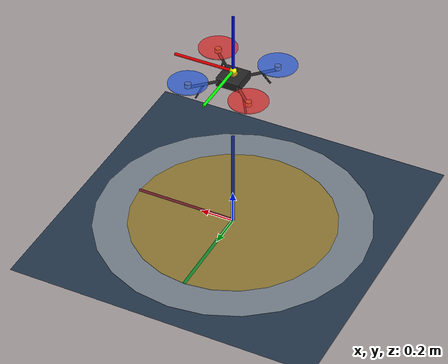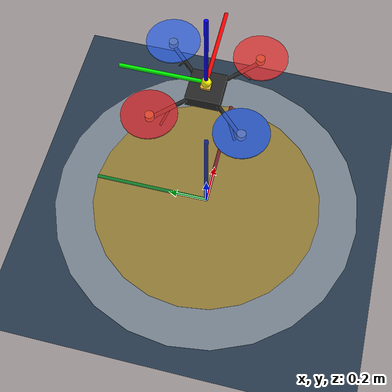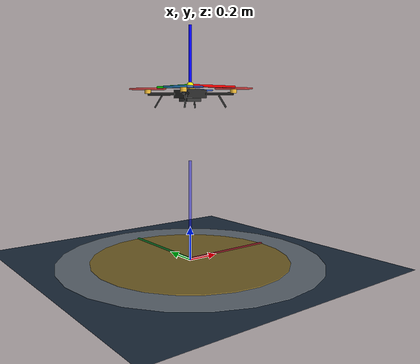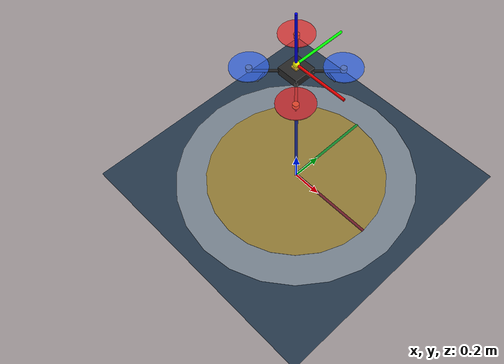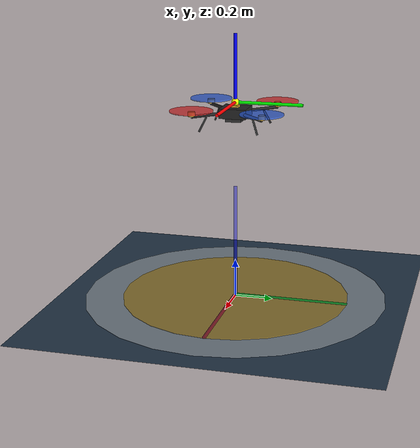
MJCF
<mujoco model="quadcopter_drone">
  <compiler angle="radian" coordinate="local" inertiafromgeom="true"/>
  <option gravity="0 0 -9.81" timestep="0.005" integrator="RK4"/>

  <visual>
    <headlight ambient="0.4 0.4 0.4" diffuse="0.8 0.8 0.8" specular="0.1 0.1 0.1"/>
  </visual>

  <asset>
    <texture type="skybox" builtin="gradient" rgb1="0.3 0.5 0.7" rgb2="0.1 0.15 0.2" width="512" height="512"/>
    <texture name="grid" type="2d" builtin="checker" width="512" height="512" rgb1="0.2 0.3 0.4" rgb2="0.1 0.15 0.2"/>
    <material name="grid_mat" texture="grid" texrepeat="20 20" reflectance="0.2"/>
    <material name="carbon_fiber" rgba="0.15 0.15 0.15 1"/>
    <material name="prop_cw" rgba="0.9 0.2 0.2 0.8"/>
    <material name="prop_ccw" rgba="0.2 0.4 0.9 0.8"/>
    <material name="red_axis" rgba="1 0 0 1"/>
    <material name="green_axis" rgba="0 1 0 1"/>
    <material name="blue_axis" rgba="0 0 1 1"/>
    <material name="gold" rgba="0.9 0.7 0.2 1"/>
  </asset>

  <worldbody>
    <!-- Ground Plane & Helipad -->
    <geom name="floor" type="plane" size="20 20 0.1" material="grid_mat"/>
    <site name="helipad_center" pos="0 0 0.002" size="0.6" type="cylinder" rgba="0.9 0.7 0.2 0.6"/>
    <site name="helipad_ring" pos="0 0 0.003" size="0.8 0.001" type="cylinder" rgba="1 1 1 0.4"/>

    <!-- Fixed World Frame Reference at Origin (visual only: no collision, so the drone cannot land on the axis pole) -->
    <geom name="world_x" type="cylinder" fromto="0 0 0.005 0.6 0 0.005" size="0.01" rgba="1 0 0 0.4" contype="0" conaffinity="0"/>
    <geom name="world_y" type="cylinder" fromto="0 0 0.005 0 0.6 0.005" size="0.01" rgba="0 1 0 0.4" contype="0" conaffinity="0"/>
    <geom name="world_z" type="cylinder" fromto="0 0 0.005 0 0 0.605" size="0.01" rgba="0 0 1 0.4" contype="0" conaffinity="0"/>

    <!-- 6-DOF Quadcopter Drone -->
    <body name="quadcopter" pos="0 0 1.0">
      <freejoint name="drone_root"/>

      <!-- Central Fuselage / Avionics Pod -->
      <geom name="fuselage" type="box" size="0.07 0.07 0.025" material="carbon_fiber" mass="0.6"/>
      <geom name="battery" type="box" size="0.05 0.04 0.015" pos="0 0 -0.03" rgba="0.2 0.2 0.2 1" mass="0.4"/>
      <geom name="flight_controller" type="box" size="0.02 0.02 0.005" pos="0 0 0.03" material="gold" mass="0.05"/>

      <!-- Carbon Fiber Diagonal Arms (X-Configuration, arm length = 0.25m) -->
      <!-- Arm 1: Front-Right (+X, -Y) -->
      <geom name="arm_fr" type="cylinder" fromto="0 0 0 0.18 -0.18 0" size="0.008" material="carbon_fiber" mass="0.05"/>
      <geom name="motor_fr" type="cylinder" pos="0.18 -0.18 0.015" size="0.018 0.012" material="gold" mass="0.06"/>
      <geom name="prop_fr" type="cylinder" pos="0.18 -0.18 0.03" size="0.11 0.003" material="prop_cw" mass="0.01"/>

      <!-- Arm 2: Front-Left (+X, +Y) -->
      <geom name="arm_fl" type="cylinder" fromto="0 0 0 0.18 0.18 0" size="0.008" material="carbon_fiber" mass="0.05"/>
      <geom name="motor_fl" type="cylinder" pos="0.18 0.18 0.015" size="0.018 0.012" material="gold" mass="0.06"/>
      <geom name="prop_fl" type="cylinder" pos="0.18 0.18 0.03" size="0.11 0.003" material="prop_ccw" mass="0.01"/>

      <!-- Arm 3: Rear-Left (-X, +Y) -->
      <geom name="arm_rl" type="cylinder" fromto="0 0 0 -0.18 0.18 0" size="0.008" material="carbon_fiber" mass="0.05"/>
      <geom name="motor_rl" type="cylinder" pos="-0.18 0.18 0.015" size="0.018 0.012" material="gold" mass="0.06"/>
      <geom name="prop_rl" type="cylinder" pos="-0.18 0.18 0.03" size="0.11 0.003" material="prop_cw" mass="0.01"/>

      <!-- Arm 4: Rear-Right (-X, -Y) -->
      <geom name="arm_rr" type="cylinder" fromto="0 0 0 -0.18 -0.18 0" size="0.008" material="carbon_fiber" mass="0.05"/>
      <geom name="motor_rr" type="cylinder" pos="-0.18 -0.18 0.015" size="0.018 0.012" material="gold" mass="0.06"/>
      <geom name="prop_rr" type="cylinder" pos="-0.18 -0.18 0.03" size="0.11 0.003" material="prop_ccw" mass="0.01"/>

      <!-- Landing Legs -->
      <geom name="leg_fr" type="cylinder" fromto="0.12 -0.12 -0.01 0.15 -0.15 -0.08" size="0.005" material="carbon_fiber" mass="0.01"/>
      <geom name="leg_fl" type="cylinder" fromto="0.12 0.12 -0.01 0.15 0.15 -0.08" size="0.005" material="carbon_fiber" mass="0.01"/>
      <geom name="leg_rl" type="cylinder" fromto="-0.12 0.12 -0.01 -0.15 0.15 -0.08" size="0.005" material="carbon_fiber" mass="0.01"/>
      <geom name="leg_rr" type="cylinder" fromto="-0.12 -0.12 -0.01 -0.15 -0.15 -0.08" size="0.005" material="carbon_fiber" mass="0.01"/>

      <!-- Attached Body Coordinate Frame Axes (RGB = XYZ) -->
      <site name="drone_body_origin" pos="0 0 0.05" size="0.02" rgba="1 1 0 1"/>
      <geom name="body_x_axis" type="cylinder" fromto="0 0 0.05 0.35 0 0.05" size="0.008" material="red_axis" mass="0.001" contype="0" conaffinity="0"/>
      <geom name="body_y_axis" type="cylinder" fromto="0 0 0.05 0 0.35 0.05" size="0.008" material="green_axis" mass="0.001" contype="0" conaffinity="0"/>
      <geom name="body_z_axis" type="cylinder" fromto="0 0 0.05 0 0 0.40" size="0.008" material="blue_axis" mass="0.001" contype="0" conaffinity="0"/>
    </body>
  </worldbody>
</mujoco>
